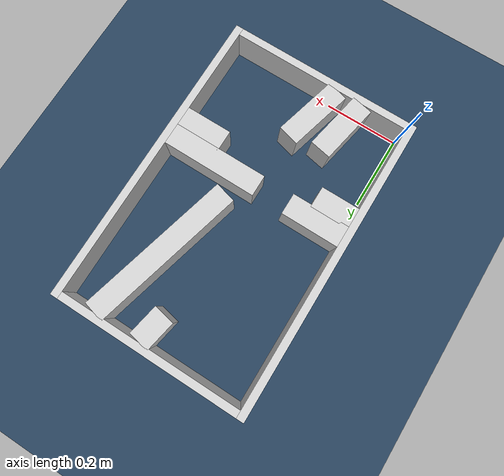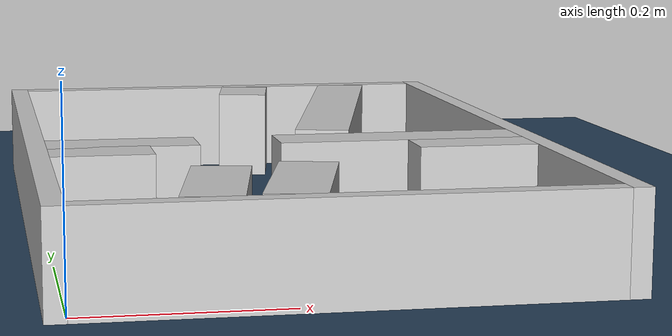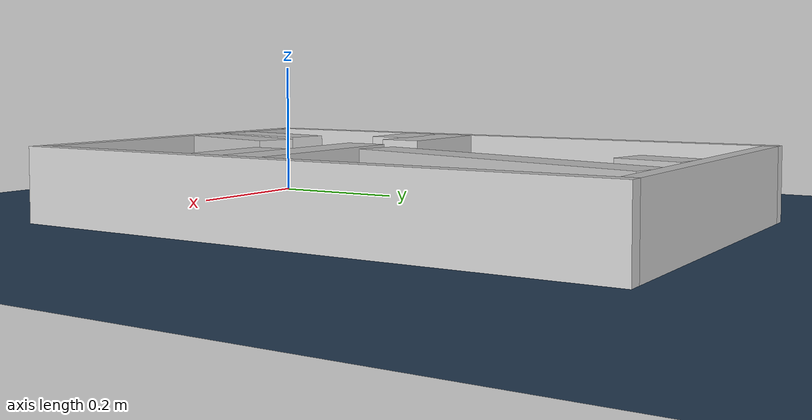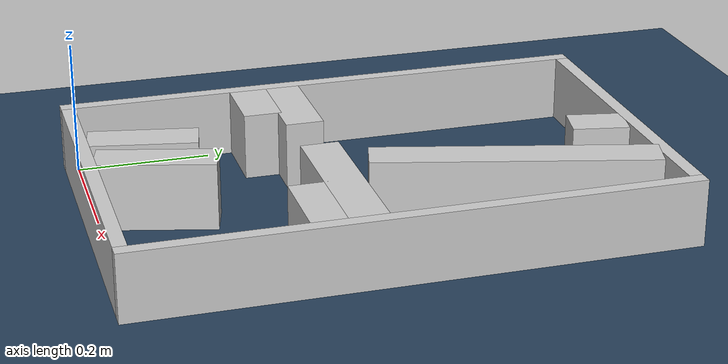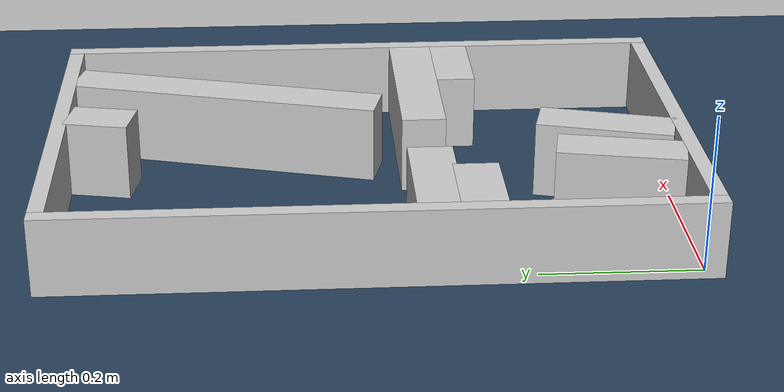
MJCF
<?xml version="1.0" ?>
<mujoco model="generated_real_template">
  <compiler angle="degree"/>
  <option timestep="0.002" integrator="implicitfast" iterations="100" cone="elliptic"/>
  <default>
    <geom density="1"/>
  </default>
  <asset>
    <texture builtin="gradient" height="3072" rgb1="0.3 0.5 0.7" rgb2="0 0 0" type="skybox" width="512"/>
    <texture builtin="checker" height="300" mark="edge" markrgb="0.8 0.8 0.8" name="groundplane" rgb1="0.2 0.3 0.4" rgb2="0.1 0.2 0.3" type="2d" width="300"/>
    <material name="groundplane" reflectance="0.2" texrepeat="5 5" texture="groundplane" texuniform="true"/>
  </asset>
  <worldbody>
    <light dir="0 0 -1" directional="true" pos="0 0 1.5"/>
    <geom name="floor" type="plane" condim="4" friction="0.5 0.005 0.001" material="groundplane" size="0 0 0.05"/>
    <body name="walls">
      <geom name="wall_boundary_left" type="box" condim="4" friction="1.0 0.005 0.0001" rgba="0.8 0.8 0.8 1" pos="-0.010000 0.387500 0.050000" euler="0 0 0.000000" size="0.010000 0.407500 0.050000"/>
      <geom name="wall_boundary_right" type="box" condim="4" friction="1.0 0.005 0.0001" rgba="0.8 0.8 0.8 1" pos="0.500000 0.387500 0.050000" euler="0 0 0.000000" size="0.010000 0.407500 0.050000"/>
      <geom name="wall_boundary_bottom" type="box" condim="4" friction="1.0 0.005 0.0001" rgba="0.8 0.8 0.8 1" pos="0.245000 -0.010000 0.050000" euler="0 0 0.000000" size="0.245000 0.010000 0.050000"/>
      <geom name="wall_boundary_top" type="box" condim="4" friction="1.0 0.005 0.0001" rgba="0.8 0.8 0.8 1" pos="0.245000 0.785000 0.050000" euler="0 0 0.000000" size="0.245000 0.010000 0.050000"/>
      <geom name="wall_inner_1_1" type="box" condim="4" friction="1.0 0.005 0.0001" rgba="0.8 0.8 0.8 1" pos="0.218313 0.084442 0.050000" euler="0 0 75.139612" size="0.087364 0.028500 0.050000"/>
      <geom name="wall_inner_1_2" type="box" condim="4" friction="1.0 0.005 0.0001" rgba="0.8 0.8 0.8 1" pos="0.348240 0.574103 0.050000" euler="0 0 75.139612" size="0.207849 0.028500 0.050000"/>
      <geom name="wall_inner_2_1" type="box" condim="4" friction="1.0 0.005 0.0001" rgba="0.8 0.8 0.8 1" pos="0.267455 0.733772 0.050000" euler="0 0 -101.027851" size="0.042003 0.028500 0.050000"/>
      <geom name="wall_inner_2_2" type="box" condim="4" friction="1.0 0.005 0.0001" rgba="0.8 0.8 0.8 1" pos="0.139850 0.079003 0.050000" euler="0 0 -101.027851" size="0.080489 0.028500 0.050000"/>
      <geom name="wall_inner_3_1" type="box" condim="4" friction="1.0 0.005 0.0001" rgba="0.8 0.8 0.8 1" pos="0.076586 0.317337 0.050000" euler="0 0 0.000000" size="0.076586 0.028500 0.050000"/>
      <geom name="wall_inner_3_2" type="box" condim="4" friction="1.0 0.005 0.0001" rgba="0.8 0.8 0.8 1" pos="0.362862 0.317337 0.050000" euler="0 0 0.000000" size="0.127138 0.028500 0.050000"/>
      <geom name="wall_inner_4_1" type="box" condim="4" friction="1.0 0.005 0.0001" rgba="0.8 0.8 0.8 1" pos="0.051336 0.265925 0.050000" euler="0 0 0.000000" size="0.051336 0.028500 0.050000"/>
      <geom name="wall_inner_4_2" type="box" condim="4" friction="1.0 0.005 0.0001" rgba="0.8 0.8 0.8 1" pos="0.428968 0.265925 0.050000" euler="0 0 0.000000" size="0.061032 0.028500 0.050000"/>
    </body>
  </worldbody>
</mujoco>
